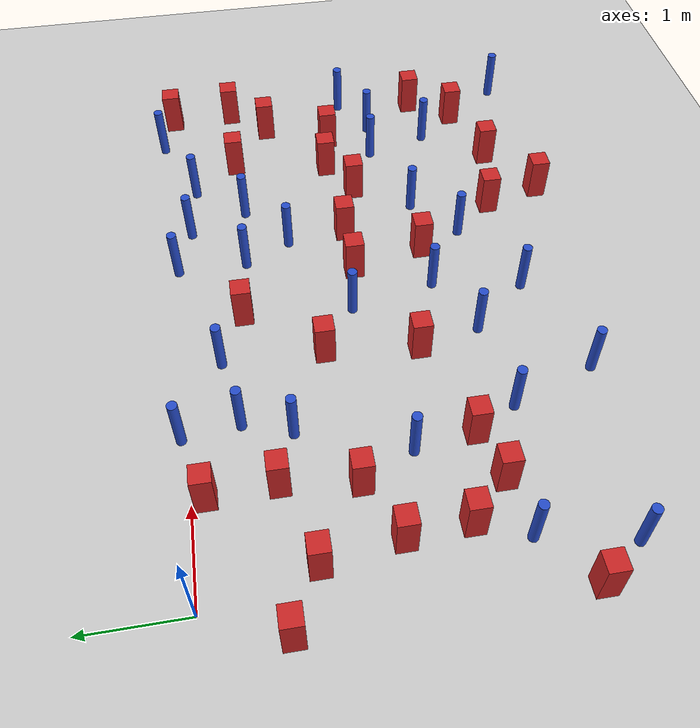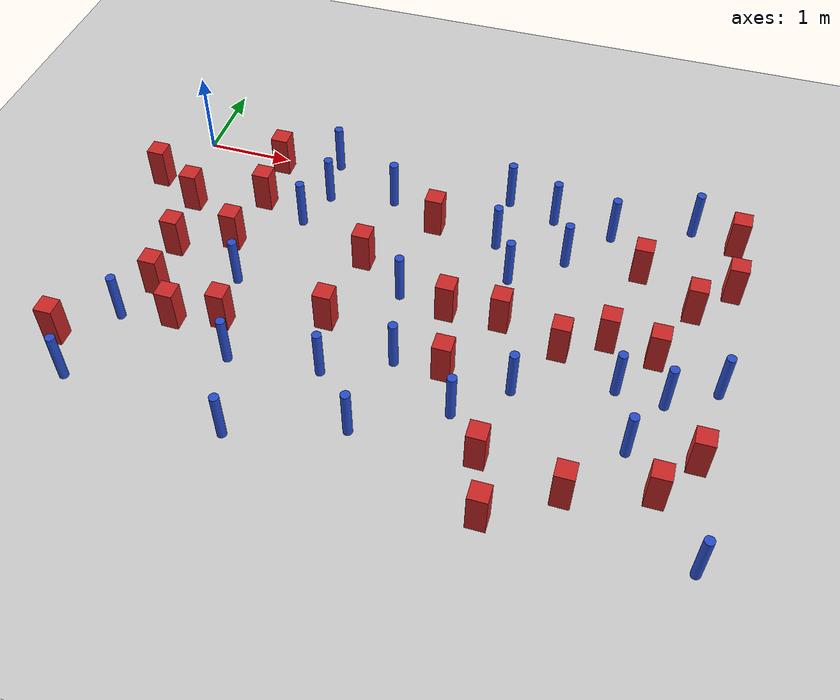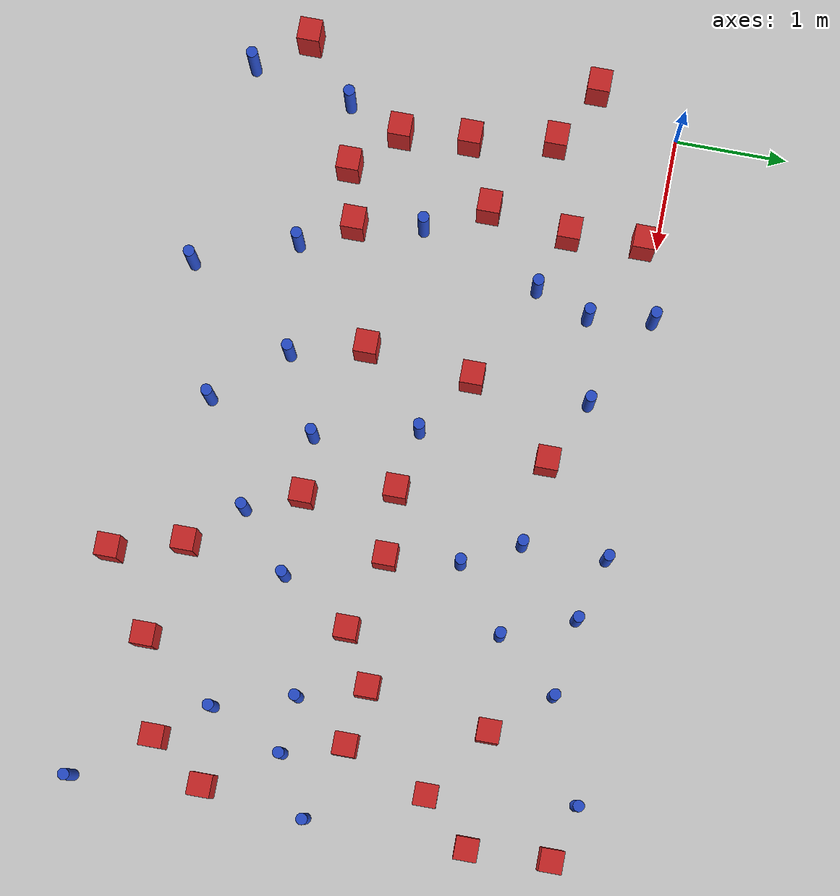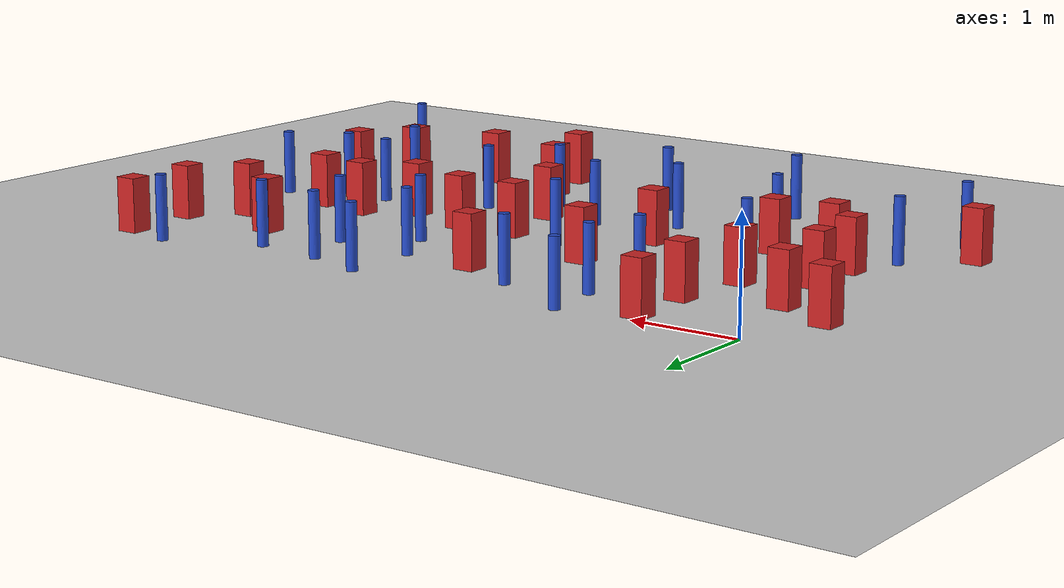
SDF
<sdf version="1.6">
 <world name="default">
  <model name="ground_plane">
   <static>1</static>
   <link name="link">
    <collision name="collision">
     <geometry><plane><normal>0 0 1</normal><size>100 100</size></plane></geometry>
     <surface><friction><ode><mu>100</mu><mu2>50</mu2></ode></friction></surface>
    </collision>
    <visual name="visual">
     <cast_shadows>0</cast_shadows>
     <geometry><plane><normal>0 0 1</normal><size>100 100</size></plane></geometry>
     <material>
      <ambient>1.0 1.0 1.0 1.0</ambient>
      <diffuse>0.8 0.8 0.8 1.0</diffuse>
      <specular>0.01 0.01 0.01 1.000000</specular>
     </material>
    </visual>
   </link>
  </model>
  <model name="NamedLocations">
   <static>true</static>
   <link name="DefaultStart"><pose>8.5 0 0 0 0 3.14</pose></link>
  </model>
  <model name="pole_obstacle0">
   <static>true</static>
   <pose>6.45569233629 -4.1689479482 7.38925637345e-09 -8.47170692796e-08 1.24976764786e-08 -1.74513093032e-07</pose>
   <link name="link">
    <pose>0 0 0.3 0 -0 0</pose>
    <inertial>
     <mass>1</mass>
     <inertia><ixx>0.145833</ixx><ixy>0</ixy><ixz>0</ixz><iyy>0.145833</iyy><iyz>0</iyz><izz>0.125</izz></inertia>
    </inertial>
    <collision name="collision">
     <geometry><cylinder><radius>0.05</radius><length>.6</length></cylinder></geometry>
    </collision>
    <visual name="visual">
     <geometry><cylinder><radius>0.05</radius><length>.6</length></cylinder></geometry>
     <material>
      <script><name>Gazebo/Blue</name><uri>file://media/materials/scripts/gazebo.material</uri></script>
     </material>
    </visual>
   </link>
  </model>
  <model name="square_post_obstacle3">
   <static>true</static>
   <pose>3.72914011373 -2.6606754903 1.91545236811e-07 -7.35059704564e-06 1.12565212e-07 2.39332434364e-05</pose>
   <link name="link">
    <pose>0 0 0.25 0 -0 0</pose>
    <inertial>
     <mass>100</mass>
     <inertia>
      <ixx>0.166667</ixx>
      <ixy>0</ixy>
      <ixz>0</ixz>
      <iyy>0.166667</iyy>
      <iyz>0</iyz>
      <izz>0.166667</izz>
     </inertia>
    </inertial>
    <collision name="collision"><geometry><box><size>.2 .2 .5</size></box></geometry></collision>
    <visual name="visual">
     <geometry><box><size>.2 .2 .5</size></box></geometry>
     <material>
      <script><name>Gazebo/Red</name><uri>file://media/materials/scripts/gazebo.material</uri></script>
     </material>
    </visual>
   </link>
  </model>
  <model name="square_post_obstacle4">
   <static>true</static>
   <pose>5.26585371671 -1.80309191971 1.91545236811e-07 -7.35059704564e-06 1.12565212e-07 2.39332434364e-05</pose>
   <link name="link">
    <pose>0 0 0.25 0 -0 0</pose>
    <inertial>
     <mass>100</mass>
     <inertia>
      <ixx>0.166667</ixx>
      <ixy>0</ixy>
      <ixz>0</ixz>
      <iyy>0.166667</iyy>
      <iyz>0</iyz>
      <izz>0.166667</izz>
     </inertia>
    </inertial>
    <collision name="collision"><geometry><box><size>.2 .2 .5</size></box></geometry></collision>
    <visual name="visual">
     <geometry><box><size>.2 .2 .5</size></box></geometry>
     <material>
      <script><name>Gazebo/Red</name><uri>file://media/materials/scripts/gazebo.material</uri></script>
     </material>
    </visual>
   </link>
  </model>
  <model name="square_post_obstacle10">
   <static>true</static>
   <pose>3.54481908602 -1.87227291666 1.91545236811e-07 -7.35059704564e-06 1.12565212e-07 2.39332434364e-05</pose>
   <link name="link">
    <pose>0 0 0.25 0 -0 0</pose>
    <inertial>
     <mass>100</mass>
     <inertia>
      <ixx>0.166667</ixx>
      <ixy>0</ixy>
      <ixz>0</ixz>
      <iyy>0.166667</iyy>
      <iyz>0</iyz>
      <izz>0.166667</izz>
     </inertia>
    </inertial>
    <collision name="collision"><geometry><box><size>.2 .2 .5</size></box></geometry></collision>
    <visual name="visual">
     <geometry><box><size>.2 .2 .5</size></box></geometry>
     <material>
      <script><name>Gazebo/Red</name><uri>file://media/materials/scripts/gazebo.material</uri></script>
     </material>
    </visual>
   </link>
  </model>
  <model name="square_post_obstacle12">
   <static>true</static>
   <pose>2.35717753829 -2.35318234047 1.91545236811e-07 -7.35059704564e-06 1.12565212e-07 2.39332434364e-05</pose>
   <link name="link">
    <pose>0 0 0.25 0 -0 0</pose>
    <inertial>
     <mass>100</mass>
     <inertia>
      <ixx>0.166667</ixx>
      <ixy>0</ixy>
      <ixz>0</ixz>
      <iyy>0.166667</iyy>
      <iyz>0</iyz>
      <izz>0.166667</izz>
     </inertia>
    </inertial>
    <collision name="collision"><geometry><box><size>.2 .2 .5</size></box></geometry></collision>
    <visual name="visual">
     <geometry><box><size>.2 .2 .5</size></box></geometry>
     <material>
      <script><name>Gazebo/Red</name><uri>file://media/materials/scripts/gazebo.material</uri></script>
     </material>
    </visual>
   </link>
  </model>
  <model name="pole_obstacle8">
   <static>true</static>
   <pose>2.49860189125 -0.361555364977 7.38925637345e-09 -8.471706928e-08 1.24976765172e-08 -1.74513093013e-07</pose>
   <link name="link">
    <pose>0 0 0.3 0 -0 0</pose>
    <inertial>
     <mass>1</mass>
     <inertia><ixx>0.145833</ixx><ixy>0</ixy><ixz>0</ixz><iyy>0.145833</iyy><iyz>0</iyz><izz>0.125</izz></inertia>
    </inertial>
    <collision name="collision">
     <geometry><cylinder><radius>0.05</radius><length>.6</length></cylinder></geometry>
    </collision>
    <visual name="visual">
     <geometry><cylinder><radius>0.05</radius><length>.6</length></cylinder></geometry>
     <material>
      <script><name>Gazebo/Blue</name><uri>file://media/materials/scripts/gazebo.material</uri></script>
     </material>
    </visual>
   </link>
  </model>
  <model name="square_post_obstacle15">
   <static>true</static>
   <pose>4.31363352942 -3.57697256788 1.91545236811e-07 -7.35059704564e-06 1.12565212e-07 2.39332434364e-05</pose>
   <link name="link">
    <pose>0 0 0.25 0 -0 0</pose>
    <inertial>
     <mass>100</mass>
     <inertia>
      <ixx>0.166667</ixx>
      <ixy>0</ixy>
      <ixz>0</ixz>
      <iyy>0.166667</iyy>
      <iyz>0</iyz>
      <izz>0.166667</izz>
     </inertia>
    </inertial>
    <collision name="collision"><geometry><box><size>.2 .2 .5</size></box></geometry></collision>
    <visual name="visual">
     <geometry><box><size>.2 .2 .5</size></box></geometry>
     <material>
      <script><name>Gazebo/Red</name><uri>file://media/materials/scripts/gazebo.material</uri></script>
     </material>
    </visual>
   </link>
  </model>
  <model name="pole_obstacle10">
   <static>true</static>
   <pose>3.82203805097 -0.716511106543 7.38925637345e-09 -8.471706928e-08 1.24976765177e-08 -1.74513093012e-07</pose>
   <link name="link">
    <pose>0 0 0.3 0 -0 0</pose>
    <inertial>
     <mass>1</mass>
     <inertia><ixx>0.145833</ixx><ixy>0</ixy><ixz>0</ixz><iyy>0.145833</iyy><iyz>0</iyz><izz>0.125</izz></inertia>
    </inertial>
    <collision name="collision">
     <geometry><cylinder><radius>0.05</radius><length>.6</length></cylinder></geometry>
    </collision>
    <visual name="visual">
     <geometry><cylinder><radius>0.05</radius><length>.6</length></cylinder></geometry>
     <material>
      <script><name>Gazebo/Blue</name><uri>file://media/materials/scripts/gazebo.material</uri></script>
     </material>
    </visual>
   </link>
  </model>
  <model name="square_post_obstacle19">
   <static>true</static>
   <pose>6.00379199853 -3.51849045793 1.91545236811e-07 -7.35059704564e-06 1.12565212e-07 2.39332434364e-05</pose>
   <link name="link">
    <pose>0 0 0.25 0 -0 0</pose>
    <inertial>
     <mass>100</mass>
     <inertia>
      <ixx>0.166667</ixx>
      <ixy>0</ixy>
      <ixz>0</ixz>
      <iyy>0.166667</iyy>
      <iyz>0</iyz>
      <izz>0.166667</izz>
     </inertia>
    </inertial>
    <collision name="collision"><geometry><box><size>.2 .2 .5</size></box></geometry></collision>
    <visual name="visual">
     <geometry><box><size>.2 .2 .5</size></box></geometry>
     <material>
      <script><name>Gazebo/Red</name><uri>file://media/materials/scripts/gazebo.material</uri></script>
     </material>
    </visual>
   </link>
  </model>
  <model name="pole_obstacle12">
   <static>true</static>
   <pose>0.215988565415 -2.90076868346 7.38925637345e-09 -8.47170692792e-08 1.24976764352e-08 -1.74513093043e-07</pose>
   <link name="link">
    <pose>0 0 0.3 0 -0 0</pose>
    <inertial>
     <mass>1</mass>
     <inertia><ixx>0.145833</ixx><ixy>0</ixy><ixz>0</ixz><iyy>0.145833</iyy><iyz>0</iyz><izz>0.125</izz></inertia>
    </inertial>
    <collision name="collision">
     <geometry><cylinder><radius>0.05</radius><length>.6</length></cylinder></geometry>
    </collision>
    <visual name="visual">
     <geometry><cylinder><radius>0.05</radius><length>.6</length></cylinder></geometry>
     <material>
      <script><name>Gazebo/Blue</name><uri>file://media/materials/scripts/gazebo.material</uri></script>
     </material>
    </visual>
   </link>
  </model>
  <model name="square_post_obstacle21">
   <static>true</static>
   <pose>6.33950803841 -3.03932088624 1.91545236811e-07 -7.35059704564e-06 1.12565212e-07 2.39332434364e-05</pose>
   <link name="link">
    <pose>0 0 0.25 0 -0 0</pose>
    <inertial>
     <mass>100</mass>
     <inertia>
      <ixx>0.166667</ixx>
      <ixy>0</ixy>
      <ixz>0</ixz>
      <iyy>0.166667</iyy>
      <iyz>0</iyz>
      <izz>0.166667</izz>
     </inertia>
    </inertial>
    <collision name="collision"><geometry><box><size>.2 .2 .5</size></box></geometry></collision>
    <visual name="visual">
     <geometry><box><size>.2 .2 .5</size></box></geometry>
     <material>
      <script><name>Gazebo/Red</name><uri>file://media/materials/scripts/gazebo.material</uri></script>
     </material>
    </visual>
   </link>
  </model>
  <model name="pole_obstacle17">
   <static>true</static>
   <pose>3.94140053442 -3.13863201137 7.38925637345e-09 -8.47170692798e-08 1.24976764939e-08 -1.74513093025e-07</pose>
   <link name="link">
    <pose>0 0 0.3 0 -0 0</pose>
    <inertial>
     <mass>1</mass>
     <inertia><ixx>0.145833</ixx><ixy>0</ixy><ixz>0</ixz><iyy>0.145833</iyy><iyz>0</iyz><izz>0.125</izz></inertia>
    </inertial>
    <collision name="collision">
     <geometry><cylinder><radius>0.05</radius><length>.6</length></cylinder></geometry>
    </collision>
    <visual name="visual">
     <geometry><cylinder><radius>0.05</radius><length>.6</length></cylinder></geometry>
     <material>
      <script><name>Gazebo/Blue</name><uri>file://media/materials/scripts/gazebo.material</uri></script>
     </material>
    </visual>
   </link>
  </model>
  <model name="square_post_obstacle30">
   <static>true</static>
   <pose>3.07154324668 -0.629317845728 1.91545236811e-07 -7.35059704564e-06 1.12565212e-07 2.39332434364e-05</pose>
   <link name="link">
    <pose>0 0 0.25 0 -0 0</pose>
    <inertial>
     <mass>100</mass>
     <inertia>
      <ixx>0.166667</ixx>
      <ixy>0</ixy>
      <ixz>0</ixz>
      <iyy>0.166667</iyy>
      <iyz>0</iyz>
      <izz>0.166667</izz>
     </inertia>
    </inertial>
    <collision name="collision"><geometry><box><size>.2 .2 .5</size></box></geometry></collision>
    <visual name="visual">
     <geometry><box><size>.2 .2 .5</size></box></geometry>
     <material>
      <script><name>Gazebo/Red</name><uri>file://media/materials/scripts/gazebo.material</uri></script>
     </material>
    </visual>
   </link>
  </model>
  <model name="pole_obstacle25">
   <static>true</static>
   <pose>3.81747457438 0.0243876135548 7.38925637345e-09 -8.47170692793e-08 1.24976764457e-08 -1.74513093039e-07</pose>
   <link name="link">
    <pose>0 0 0.3 0 -0 0</pose>
    <inertial>
     <mass>1</mass>
     <inertia><ixx>0.145833</ixx><ixy>0</ixy><ixz>0</ixz><iyy>0.145833</iyy><iyz>0</iyz><izz>0.125</izz></inertia>
    </inertial>
    <collision name="collision">
     <geometry><cylinder><radius>0.05</radius><length>.6</length></cylinder></geometry>
    </collision>
    <visual name="visual">
     <geometry><cylinder><radius>0.05</radius><length>.6</length></cylinder></geometry>
     <material>
      <script><name>Gazebo/Blue</name><uri>file://media/materials/scripts/gazebo.material</uri></script>
     </material>
    </visual>
   </link>
  </model>
  <model name="pole_obstacle28">
   <static>true</static>
   <pose>4.62795770287 -0.76906631705 7.38925637345e-09 -8.47170692799e-08 1.24976765038e-08 -1.74513093018e-07</pose>
   <link name="link">
    <pose>0 0 0.3 0 -0 0</pose>
    <inertial>
     <mass>1</mass>
     <inertia><ixx>0.145833</ixx><ixy>0</ixy><ixz>0</ixz><iyy>0.145833</iyy><iyz>0</iyz><izz>0.125</izz></inertia>
    </inertial>
    <collision name="collision">
     <geometry><cylinder><radius>0.05</radius><length>.6</length></cylinder></geometry>
    </collision>
    <visual name="visual">
     <geometry><cylinder><radius>0.05</radius><length>.6</length></cylinder></geometry>
     <material>
      <script><name>Gazebo/Blue</name><uri>file://media/materials/scripts/gazebo.material</uri></script>
     </material>
    </visual>
   </link>
  </model>
  <model name="square_post_obstacle34">
   <static>true</static>
   <pose>0.941888120557 -1.52196813781 1.91545236811e-07 -7.35059704564e-06 1.12565212e-07 2.39332434364e-05</pose>
   <link name="link">
    <pose>0 0 0.25 0 -0 0</pose>
    <inertial>
     <mass>100</mass>
     <inertia>
      <ixx>0.166667</ixx>
      <ixy>0</ixy>
      <ixz>0</ixz>
      <iyy>0.166667</iyy>
      <iyz>0</iyz>
      <izz>0.166667</izz>
     </inertia>
    </inertial>
    <collision name="collision"><geometry><box><size>.2 .2 .5</size></box></geometry></collision>
    <visual name="visual">
     <geometry><box><size>.2 .2 .5</size></box></geometry>
     <material>
      <script><name>Gazebo/Red</name><uri>file://media/materials/scripts/gazebo.material</uri></script>
     </material>
    </visual>
   </link>
  </model>
  <model name="pole_obstacle45">
   <static>true</static>
   <pose>5.94297906391 0.129956108175 7.38925637345e-09 -8.47170692801e-08 1.24976765186e-08 -1.74513093012e-07</pose>
   <link name="link">
    <pose>0 0 0.3 0 -0 0</pose>
    <inertial>
     <mass>1</mass>
     <inertia><ixx>0.145833</ixx><ixy>0</ixy><ixz>0</ixz><iyy>0.145833</iyy><iyz>0</iyz><izz>0.125</izz></inertia>
    </inertial>
    <collision name="collision">
     <geometry><cylinder><radius>0.05</radius><length>.6</length></cylinder></geometry>
    </collision>
    <visual name="visual">
     <geometry><cylinder><radius>0.05</radius><length>.6</length></cylinder></geometry>
     <material>
      <script><name>Gazebo/Blue</name><uri>file://media/materials/scripts/gazebo.material</uri></script>
     </material>
    </visual>
   </link>
  </model>
  <model name="square_post_obstacle55">
   <static>true</static>
   <pose>6.08186259291 -1.1484083643 1.91545236811e-07 -7.35059704564e-06 1.12565212e-07 2.39332434364e-05</pose>
   <link name="link">
    <pose>0 0 0.25 0 -0 0</pose>
    <inertial>
     <mass>100</mass>
     <inertia>
      <ixx>0.166667</ixx>
      <ixy>0</ixy>
      <ixz>0</ixz>
      <iyy>0.166667</iyy>
      <iyz>0</iyz>
      <izz>0.166667</izz>
     </inertia>
    </inertial>
    <collision name="collision"><geometry><box><size>.2 .2 .5</size></box></geometry></collision>
    <visual name="visual">
     <geometry><box><size>.2 .2 .5</size></box></geometry>
     <material>
      <script><name>Gazebo/Red</name><uri>file://media/materials/scripts/gazebo.material</uri></script>
     </material>
    </visual>
   </link>
  </model>
  <model name="square_post_obstacle61">
   <static>true</static>
   <pose>6.46481894077 -0.731252812491 1.91545236811e-07 -7.35059704564e-06 1.12565212e-07 2.39332434364e-05</pose>
   <link name="link">
    <pose>0 0 0.25 0 -0 0</pose>
    <inertial>
     <mass>100</mass>
     <inertia>
      <ixx>0.166667</ixx>
      <ixy>0</ixy>
      <ixz>0</ixz>
      <iyy>0.166667</iyy>
      <iyz>0</iyz>
      <izz>0.166667</izz>
     </inertia>
    </inertial>
    <collision name="collision"><geometry><box><size>.2 .2 .5</size></box></geometry></collision>
    <visual name="visual">
     <geometry><box><size>.2 .2 .5</size></box></geometry>
     <material>
      <script><name>Gazebo/Red</name><uri>file://media/materials/scripts/gazebo.material</uri></script>
     </material>
    </visual>
   </link>
  </model>
  <model name="pole_obstacle59">
   <static>true</static>
   <pose>6.46403293455 -2.13285358477 7.38925637345e-09 -8.47170692798e-08 1.24976764937e-08 -1.74513093023e-07</pose>
   <link name="link">
    <pose>0 0 0.3 0 -0 0</pose>
    <inertial>
     <mass>1</mass>
     <inertia><ixx>0.145833</ixx><ixy>0</ixy><ixz>0</ixz><iyy>0.145833</iyy><iyz>0</iyz><izz>0.125</izz></inertia>
    </inertial>
    <collision name="collision">
     <geometry><cylinder><radius>0.05</radius><length>.6</length></cylinder></geometry>
    </collision>
    <visual name="visual">
     <geometry><cylinder><radius>0.05</radius><length>.6</length></cylinder></geometry>
     <material>
      <script><name>Gazebo/Blue</name><uri>file://media/materials/scripts/gazebo.material</uri></script>
     </material>
    </visual>
   </link>
  </model>
  <model name="square_post_obstacle65">
   <static>true</static>
   <pose>2.46185416951 -1.39918184585 1.91545236811e-07 -7.35059704564e-06 1.12565212e-07 2.39332434364e-05</pose>
   <link name="link">
    <pose>0 0 0.25 0 -0 0</pose>
    <inertial>
     <mass>100</mass>
     <inertia>
      <ixx>0.166667</ixx>
      <ixy>0</ixy>
      <ixz>0</ixz>
      <iyy>0.166667</iyy>
      <iyz>0</iyz>
      <izz>0.166667</izz>
     </inertia>
    </inertial>
    <collision name="collision"><geometry><box><size>.2 .2 .5</size></box></geometry></collision>
    <visual name="visual">
     <geometry><box><size>.2 .2 .5</size></box></geometry>
     <material>
      <script><name>Gazebo/Red</name><uri>file://media/materials/scripts/gazebo.material</uri></script>
     </material>
    </visual>
   </link>
  </model>
  <model name="pole_obstacle63">
   <static>true</static>
   <pose>3.03463513822 -3.61711571949 7.38925637345e-09 -8.47170692798e-08 1.24976764939e-08 -1.74513093025e-07</pose>
   <link name="link">
    <pose>0 0 0.3 0 -0 0</pose>
    <inertial>
     <mass>1</mass>
     <inertia><ixx>0.145833</ixx><ixy>0</ixy><ixz>0</ixz><iyy>0.145833</iyy><iyz>0</iyz><izz>0.125</izz></inertia>
    </inertial>
    <collision name="collision">
     <geometry><cylinder><radius>0.05</radius><length>.6</length></cylinder></geometry>
    </collision>
    <visual name="visual">
     <geometry><cylinder><radius>0.05</radius><length>.6</length></cylinder></geometry>
     <material>
      <script><name>Gazebo/Blue</name><uri>file://media/materials/scripts/gazebo.material</uri></script>
     </material>
    </visual>
   </link>
  </model>
  <model name="pole_obstacle72">
   <static>true</static>
   <pose>4.37923026815 -0.140369925279 7.38925637345e-09 -8.471706928e-08 1.24976765188e-08 -1.74513093011e-07</pose>
   <link name="link">
    <pose>0 0 0.3 0 -0 0</pose>
    <inertial>
     <mass>1</mass>
     <inertia><ixx>0.145833</ixx><ixy>0</ixy><ixz>0</ixz><iyy>0.145833</iyy><iyz>0</iyz><izz>0.125</izz></inertia>
    </inertial>
    <collision name="collision">
     <geometry><cylinder><radius>0.05</radius><length>.6</length></cylinder></geometry>
    </collision>
    <visual name="visual">
     <geometry><cylinder><radius>0.05</radius><length>.6</length></cylinder></geometry>
     <material>
      <script><name>Gazebo/Blue</name><uri>file://media/materials/scripts/gazebo.material</uri></script>
     </material>
    </visual>
   </link>
  </model>
  <model name="square_post_obstacle77">
   <static>true</static>
   <pose>1.04527880258 -0.792780679803 1.91545236811e-07 -7.35059704564e-06 1.12565212e-07 2.39332434364e-05</pose>
   <link name="link">
    <pose>0 0 0.25 0 -0 0</pose>
    <inertial>
     <mass>100</mass>
     <inertia>
      <ixx>0.166667</ixx>
      <ixy>0</ixy>
      <ixz>0</ixz>
      <iyy>0.166667</iyy>
      <iyz>0</iyz>
      <izz>0.166667</izz>
     </inertia>
    </inertial>
    <collision name="collision"><geometry><box><size>.2 .2 .5</size></box></geometry></collision>
    <visual name="visual">
     <geometry><box><size>.2 .2 .5</size></box></geometry>
     <material>
      <script><name>Gazebo/Red</name><uri>file://media/materials/scripts/gazebo.material</uri></script>
     </material>
    </visual>
   </link>
  </model>
  <model name="square_post_obstacle79">
   <static>true</static>
   <pose>5.45620392106 -0.719798995207 1.91545236811e-07 -7.35059704564e-06 1.12565212e-07 2.39332434364e-05</pose>
   <link name="link">
    <pose>0 0 0.25 0 -0 0</pose>
    <inertial>
     <mass>100</mass>
     <inertia>
      <ixx>0.166667</ixx>
      <ixy>0</ixy>
      <ixz>0</ixz>
      <iyy>0.166667</iyy>
      <iyz>0</iyz>
      <izz>0.166667</izz>
     </inertia>
    </inertial>
    <collision name="collision"><geometry><box><size>.2 .2 .5</size></box></geometry></collision>
    <visual name="visual">
     <geometry><box><size>.2 .2 .5</size></box></geometry>
     <material>
      <script><name>Gazebo/Red</name><uri>file://media/materials/scripts/gazebo.material</uri></script>
     </material>
    </visual>
   </link>
  </model>
  <model name="pole_obstacle92">
   <static>true</static>
   <pose>1.67642680315 0.0671667085578 7.38925637345e-09 -8.47170692799e-08 1.24976765069e-08 -1.74513093017e-07</pose>
   <link name="link">
    <pose>0 0 0.3 0 -0 0</pose>
    <inertial>
     <mass>1</mass>
     <inertia><ixx>0.145833</ixx><ixy>0</ixy><ixz>0</ixz><iyy>0.145833</iyy><iyz>0</iyz><izz>0.125</izz></inertia>
    </inertial>
    <collision name="collision">
     <geometry><cylinder><radius>0.05</radius><length>.6</length></cylinder></geometry>
    </collision>
    <visual name="visual">
     <geometry><cylinder><radius>0.05</radius><length>.6</length></cylinder></geometry>
     <material>
      <script><name>Gazebo/Blue</name><uri>file://media/materials/scripts/gazebo.material</uri></script>
     </material>
    </visual>
   </link>
  </model>
  <model name="square_post_obstacle83">
   <static>true</static>
   <pose>4.80955125158 -2.07028521446 1.91545236811e-07 -7.35059704564e-06 1.12565212e-07 2.39332434364e-05</pose>
   <link name="link">
    <pose>0 0 0.25 0 -0 0</pose>
    <inertial>
     <mass>100</mass>
     <inertia>
      <ixx>0.166667</ixx>
      <ixy>0</ixy>
      <ixz>0</ixz>
      <iyy>0.166667</iyy>
      <iyz>0</iyz>
      <izz>0.166667</izz>
     </inertia>
    </inertial>
    <collision name="collision"><geometry><box><size>.2 .2 .5</size></box></geometry></collision>
    <visual name="visual">
     <geometry><box><size>.2 .2 .5</size></box></geometry>
     <material>
      <script><name>Gazebo/Red</name><uri>file://media/materials/scripts/gazebo.material</uri></script>
     </material>
    </visual>
   </link>
  </model>
  <model name="pole_obstacle121">
   <static>true</static>
   <pose>5.66816344616 -3.08764963438 7.38925637345e-09 -8.47170692798e-08 1.24976764937e-08 -1.74513093023e-07</pose>
   <link name="link">
    <pose>0 0 0.3 0 -0 0</pose>
    <inertial>
     <mass>1</mass>
     <inertia><ixx>0.145833</ixx><ixy>0</ixy><ixz>0</ixz><iyy>0.145833</iyy><iyz>0</iyz><izz>0.125</izz></inertia>
    </inertial>
    <collision name="collision">
     <geometry><cylinder><radius>0.05</radius><length>.6</length></cylinder></geometry>
    </collision>
    <visual name="visual">
     <geometry><cylinder><radius>0.05</radius><length>.6</length></cylinder></geometry>
     <material>
      <script><name>Gazebo/Blue</name><uri>file://media/materials/scripts/gazebo.material</uri></script>
     </material>
    </visual>
   </link>
  </model>
  <model name="pole_obstacle126">
   <static>true</static>
   <pose>2.52396847582 -3.01019829357 7.38925637345e-09 -8.47170692798e-08 1.24976764939e-08 -1.74513093025e-07</pose>
   <link name="link">
    <pose>0 0 0.3 0 -0 0</pose>
    <inertial>
     <mass>1</mass>
     <inertia><ixx>0.145833</ixx><ixy>0</ixy><ixz>0</ixz><iyy>0.145833</iyy><iyz>0</iyz><izz>0.125</izz></inertia>
    </inertial>
    <collision name="collision">
     <geometry><cylinder><radius>0.05</radius><length>.6</length></cylinder></geometry>
    </collision>
    <visual name="visual">
     <geometry><cylinder><radius>0.05</radius><length>.6</length></cylinder></geometry>
     <material>
      <script><name>Gazebo/Blue</name><uri>file://media/materials/scripts/gazebo.material</uri></script>
     </material>
    </visual>
   </link>
  </model>
  <model name="pole_obstacle134">
   <static>true</static>
   <pose>1.54305510012 -3.11592347389 7.38925637345e-09 -8.47170692799e-08 1.24976765053e-08 -1.74513093017e-07</pose>
   <link name="link">
    <pose>0 0 0.3 0 -0 0</pose>
    <inertial>
     <mass>1</mass>
     <inertia><ixx>0.145833</ixx><ixy>0</ixy><ixz>0</ixz><iyy>0.145833</iyy><iyz>0</iyz><izz>0.125</izz></inertia>
    </inertial>
    <collision name="collision">
     <geometry><cylinder><radius>0.05</radius><length>.6</length></cylinder></geometry>
    </collision>
    <visual name="visual">
     <geometry><cylinder><radius>0.05</radius><length>.6</length></cylinder></geometry>
     <material>
      <script><name>Gazebo/Blue</name><uri>file://media/materials/scripts/gazebo.material</uri></script>
     </material>
    </visual>
   </link>
  </model>
  <model name="square_post_obstacle116">
   <static>true</static>
   <pose>0.785318791908 -2.80075919067 1.91545236811e-07 -7.35059704564e-06 1.12565212e-07 2.39332434364e-05</pose>
   <link name="link">
    <pose>0 0 0.25 0 -0 0</pose>
    <inertial>
     <mass>100</mass>
     <inertia>
      <ixx>0.166667</ixx>
      <ixy>0</ixy>
      <ixz>0</ixz>
      <iyy>0.166667</iyy>
      <iyz>0</iyz>
      <izz>0.166667</izz>
     </inertia>
    </inertial>
    <collision name="collision"><geometry><box><size>.2 .2 .5</size></box></geometry></collision>
    <visual name="visual">
     <geometry><box><size>.2 .2 .5</size></box></geometry>
     <material>
      <script><name>Gazebo/Red</name><uri>file://media/materials/scripts/gazebo.material</uri></script>
     </material>
    </visual>
   </link>
  </model>
  <model name="square_post_obstacle118">
   <static>true</static>
   <pose>-0.293369010019 -3.35173558408 1.91545236811e-07 -7.35059704564e-06 1.12565212e-07 2.39332434364e-05</pose>
   <link name="link">
    <pose>0 0 0.25 0 -0 0</pose>
    <inertial>
     <mass>100</mass>
     <inertia>
      <ixx>0.166667</ixx>
      <ixy>0</ixy>
      <ixz>0</ixz>
      <iyy>0.166667</iyy>
      <iyz>0</iyz>
      <izz>0.166667</izz>
     </inertia>
    </inertial>
    <collision name="collision"><geometry><box><size>.2 .2 .5</size></box></geometry></collision>
    <visual name="visual">
     <geometry><box><size>.2 .2 .5</size></box></geometry>
     <material>
      <script><name>Gazebo/Red</name><uri>file://media/materials/scripts/gazebo.material</uri></script>
     </material>
    </visual>
   </link>
  </model>
  <model name="square_post_obstacle120">
   <static>true</static>
   <pose>5.17182999823 -3.75941097542 1.91545236811e-07 -7.35059704564e-06 1.12565212e-07 2.39332434364e-05</pose>
   <link name="link">
    <pose>0 0 0.25 0 -0 0</pose>
    <inertial>
     <mass>100</mass>
     <inertia>
      <ixx>0.166667</ixx>
      <ixy>0</ixy>
      <ixz>0</ixz>
      <iyy>0.166667</iyy>
      <iyz>0</iyz>
      <izz>0.166667</izz>
     </inertia>
    </inertial>
    <collision name="collision"><geometry><box><size>.2 .2 .5</size></box></geometry></collision>
    <visual name="visual">
     <geometry><box><size>.2 .2 .5</size></box></geometry>
     <material>
      <script><name>Gazebo/Red</name><uri>file://media/materials/scripts/gazebo.material</uri></script>
     </material>
    </visual>
   </link>
  </model>
  <model name="square_post_obstacle128">
   <static>true</static>
   <pose>0.406396634696 -2.4136307573 1.91545236811e-07 -7.35059704564e-06 1.12565212e-07 2.39332434364e-05</pose>
   <link name="link">
    <pose>0 0 0.25 0 -0 0</pose>
    <inertial>
     <mass>100</mass>
     <inertia>
      <ixx>0.166667</ixx>
      <ixy>0</ixy>
      <ixz>0</ixz>
      <iyy>0.166667</iyy>
      <iyz>0</iyz>
      <izz>0.166667</izz>
     </inertia>
    </inertial>
    <collision name="collision"><geometry><box><size>.2 .2 .5</size></box></geometry></collision>
    <visual name="visual">
     <geometry><box><size>.2 .2 .5</size></box></geometry>
     <material>
      <script><name>Gazebo/Red</name><uri>file://media/materials/scripts/gazebo.material</uri></script>
     </material>
    </visual>
   </link>
  </model>
  <model name="square_post_obstacle133">
   <static>true</static>
   <pose>-0.301640267485 -0.761790117217 1.91545236811e-07 -7.35059704564e-06 1.12565212e-07 2.39332434364e-05</pose>
   <link name="link">
    <pose>0 0 0.25 0 -0 0</pose>
    <inertial>
     <mass>100</mass>
     <inertia>
      <ixx>0.166667</ixx>
      <ixy>0</ixy>
      <ixz>0</ixz>
      <iyy>0.166667</iyy>
      <iyz>0</iyz>
      <izz>0.166667</izz>
     </inertia>
    </inertial>
    <collision name="collision"><geometry><box><size>.2 .2 .5</size></box></geometry></collision>
    <visual name="visual">
     <geometry><box><size>.2 .2 .5</size></box></geometry>
     <material>
      <script><name>Gazebo/Red</name><uri>file://media/materials/scripts/gazebo.material</uri></script>
     </material>
    </visual>
   </link>
  </model>
  <model name="square_post_obstacle139">
   <static>true</static>
   <pose>0.241376500069 -1.04686280771 1.91545236811e-07 -7.35059704564e-06 1.12565212e-07 2.39332434364e-05</pose>
   <link name="link">
    <pose>0 0 0.25 0 -0 0</pose>
    <inertial>
     <mass>100</mass>
     <inertia>
      <ixx>0.166667</ixx>
      <ixy>0</ixy>
      <ixz>0</ixz>
      <iyy>0.166667</iyy>
      <iyz>0</iyz>
      <izz>0.166667</izz>
     </inertia>
    </inertial>
    <collision name="collision"><geometry><box><size>.2 .2 .5</size></box></geometry></collision>
    <visual name="visual">
     <geometry><box><size>.2 .2 .5</size></box></geometry>
     <material>
      <script><name>Gazebo/Red</name><uri>file://media/materials/scripts/gazebo.material</uri></script>
     </material>
    </visual>
   </link>
  </model>
  <model name="pole_obstacle149">
   <static>true</static>
   <pose>3.20793266205 -2.67342492518 7.38925637345e-09 -8.47170692798e-08 1.24976764939e-08 -1.74513093025e-07</pose>
   <link name="link">
    <pose>0 0 0.3 0 -0 0</pose>
    <inertial>
     <mass>1</mass>
     <inertia><ixx>0.145833</ixx><ixy>0</ixy><ixz>0</ixz><iyy>0.145833</iyy><iyz>0</iyz><izz>0.125</izz></inertia>
    </inertial>
    <collision name="collision">
     <geometry><cylinder><radius>0.05</radius><length>.6</length></cylinder></geometry>
    </collision>
    <visual name="visual">
     <geometry><cylinder><radius>0.05</radius><length>.6</length></cylinder></geometry>
     <material>
      <script><name>Gazebo/Blue</name><uri>file://media/materials/scripts/gazebo.material</uri></script>
     </material>
    </visual>
   </link>
  </model>
  <model name="pole_obstacle154">
   <static>true</static>
   <pose>4.07410040962 -1.21171812363 7.38925637345e-09 -8.471706928e-08 1.24976765134e-08 -1.74513093015e-07</pose>
   <link name="link">
    <pose>0 0 0.3 0 -0 0</pose>
    <inertial>
     <mass>1</mass>
     <inertia><ixx>0.145833</ixx><ixy>0</ixy><ixz>0</ixz><iyy>0.145833</iyy><iyz>0</iyz><izz>0.125</izz></inertia>
    </inertial>
    <collision name="collision">
     <geometry><cylinder><radius>0.05</radius><length>.6</length></cylinder></geometry>
    </collision>
    <visual name="visual">
     <geometry><cylinder><radius>0.05</radius><length>.6</length></cylinder></geometry>
     <material>
      <script><name>Gazebo/Blue</name><uri>file://media/materials/scripts/gazebo.material</uri></script>
     </material>
    </visual>
   </link>
  </model>
  <model name="square_post_obstacle149">
   <static>true</static>
   <pose>4.48695445278 -4.20619593846 1.91545236811e-07 -7.35059704564e-06 1.12565212e-07 2.39332434364e-05</pose>
   <link name="link">
    <pose>0 0 0.25 0 -0 0</pose>
    <inertial>
     <mass>100</mass>
     <inertia>
      <ixx>0.166667</ixx>
      <ixy>0</ixy>
      <ixz>0</ixz>
      <iyy>0.166667</iyy>
      <iyz>0</iyz>
      <izz>0.166667</izz>
     </inertia>
    </inertial>
    <collision name="collision"><geometry><box><size>.2 .2 .5</size></box></geometry></collision>
    <visual name="visual">
     <geometry><box><size>.2 .2 .5</size></box></geometry>
     <material>
      <script><name>Gazebo/Red</name><uri>file://media/materials/scripts/gazebo.material</uri></script>
     </material>
    </visual>
   </link>
  </model>
  <model name="pole_obstacle160">
   <static>true</static>
   <pose>4.44847794078 -2.69228341101 7.38925637345e-09 -8.47170692798e-08 1.24976764937e-08 -1.74513093023e-07</pose>
   <link name="link">
    <pose>0 0 0.3 0 -0 0</pose>
    <inertial>
     <mass>1</mass>
     <inertia><ixx>0.145833</ixx><ixy>0</ixy><ixz>0</ixz><iyy>0.145833</iyy><iyz>0</iyz><izz>0.125</izz></inertia>
    </inertial>
    <collision name="collision">
     <geometry><cylinder><radius>0.05</radius><length>.6</length></cylinder></geometry>
    </collision>
    <visual name="visual">
     <geometry><cylinder><radius>0.05</radius><length>.6</length></cylinder></geometry>
     <material>
      <script><name>Gazebo/Blue</name><uri>file://media/materials/scripts/gazebo.material</uri></script>
     </material>
    </visual>
   </link>
  </model>
  <model name="pole_obstacle161">
   <static>true</static>
   <pose>1.21161956871 -2.05990757772 7.38925637345e-09 -8.47170692799e-08 1.24976765053e-08 -1.74513093017e-07</pose>
   <link name="link">
    <pose>0 0 0.3 0 -0 0</pose>
    <inertial>
     <mass>1</mass>
     <inertia><ixx>0.145833</ixx><ixy>0</ixy><ixz>0</ixz><iyy>0.145833</iyy><iyz>0</iyz><izz>0.125</izz></inertia>
    </inertial>
    <collision name="collision">
     <geometry><cylinder><radius>0.05</radius><length>.6</length></cylinder></geometry>
    </collision>
    <visual name="visual">
     <geometry><cylinder><radius>0.05</radius><length>.6</length></cylinder></geometry>
     <material>
      <script><name>Gazebo/Blue</name><uri>file://media/materials/scripts/gazebo.material</uri></script>
     </material>
    </visual>
   </link>
  </model>
  <model name="square_post_obstacle157">
   <static>true</static>
   <pose>4.13498234727 -1.85687447901 1.91545236811e-07 -7.35059704564e-06 1.12565212e-07 2.39332434364e-05</pose>
   <link name="link">
    <pose>0 0 0.25 0 -0 0</pose>
    <inertial>
     <mass>100</mass>
     <inertia>
      <ixx>0.166667</ixx>
      <ixy>0</ixy>
      <ixz>0</ixz>
      <iyy>0.166667</iyy>
      <iyz>0</iyz>
      <izz>0.166667</izz>
     </inertia>
    </inertial>
    <collision name="collision"><geometry><box><size>.2 .2 .5</size></box></geometry></collision>
    <visual name="visual">
     <geometry><box><size>.2 .2 .5</size></box></geometry>
     <material>
      <script><name>Gazebo/Red</name><uri>file://media/materials/scripts/gazebo.material</uri></script>
     </material>
    </visual>
   </link>
  </model>
  <model name="pole_obstacle166">
   <static>true</static>
   <pose>5.45638582987 -2.38693026478 7.38925637345e-09 -8.47170692798e-08 1.24976764937e-08 -1.74513093023e-07</pose>
   <link name="link">
    <pose>0 0 0.3 0 -0 0</pose>
    <inertial>
     <mass>1</mass>
     <inertia><ixx>0.145833</ixx><ixy>0</ixy><ixz>0</ixz><iyy>0.145833</iyy><iyz>0</iyz><izz>0.125</izz></inertia>
    </inertial>
    <collision name="collision">
     <geometry><cylinder><radius>0.05</radius><length>.6</length></cylinder></geometry>
    </collision>
    <visual name="visual">
     <geometry><cylinder><radius>0.05</radius><length>.6</length></cylinder></geometry>
     <material>
      <script><name>Gazebo/Blue</name><uri>file://media/materials/scripts/gazebo.material</uri></script>
     </material>
    </visual>
   </link>
  </model>
  <model name="pole_obstacle167">
   <static>true</static>
   <pose>1.57632554629 -0.982092629621 7.38925637345e-09 -8.47170692798e-08 1.24976765028e-08 -1.74513093019e-07</pose>
   <link name="link">
    <pose>0 0 0.3 0 -0 0</pose>
    <inertial>
     <mass>1</mass>
     <inertia><ixx>0.145833</ixx><ixy>0</ixy><ixz>0</ixz><iyy>0.145833</iyy><iyz>0</iyz><izz>0.125</izz></inertia>
    </inertial>
    <collision name="collision">
     <geometry><cylinder><radius>0.05</radius><length>.6</length></cylinder></geometry>
    </collision>
    <visual name="visual">
     <geometry><cylinder><radius>0.05</radius><length>.6</length></cylinder></geometry>
     <material>
      <script><name>Gazebo/Blue</name><uri>file://media/materials/scripts/gazebo.material</uri></script>
     </material>
    </visual>
   </link>
  </model>
  <model name="square_post_obstacle164">
   <static>true</static>
   <pose>0.358987598016 -1.79642390243 1.91545236811e-07 -7.35059704564e-06 1.12565212e-07 2.39332434364e-05</pose>
   <link name="link">
    <pose>0 0 0.25 0 -0 0</pose>
    <inertial>
     <mass>100</mass>
     <inertia>
      <ixx>0.166667</ixx>
      <ixy>0</ixy>
      <ixz>0</ixz>
      <iyy>0.166667</iyy>
      <iyz>0</iyz>
      <izz>0.166667</izz>
     </inertia>
    </inertial>
    <collision name="collision"><geometry><box><size>.2 .2 .5</size></box></geometry></collision>
    <visual name="visual">
     <geometry><box><size>.2 .2 .5</size></box></geometry>
     <material>
      <script><name>Gazebo/Red</name><uri>file://media/materials/scripts/gazebo.material</uri></script>
     </material>
    </visual>
   </link>
  </model>
  <model name="pole_obstacle175">
   <static>true</static>
   <pose>5.0603583082 -0.224390902643 7.38925637345e-09 -8.471706928e-08 1.24976765089e-08 -1.74513093017e-07</pose>
   <link name="link">
    <pose>0 0 0.3 0 -0 0</pose>
    <inertial>
     <mass>1</mass>
     <inertia><ixx>0.145833</ixx><ixy>0</ixy><ixz>0</ixz><iyy>0.145833</iyy><iyz>0</iyz><izz>0.125</izz></inertia>
    </inertial>
    <collision name="collision">
     <geometry><cylinder><radius>0.05</radius><length>.6</length></cylinder></geometry>
    </collision>
    <visual name="visual">
     <geometry><cylinder><radius>0.05</radius><length>.6</length></cylinder></geometry>
     <material>
      <script><name>Gazebo/Blue</name><uri>file://media/materials/scripts/gazebo.material</uri></script>
     </material>
    </visual>
   </link>
  </model>
  <model name="square_post_obstacle165">
   <static>true</static>
   <pose>1.01743010971 -0.132219973728 1.91545236811e-07 -7.35059704564e-06 1.12565212e-07 2.39332434364e-05</pose>
   <link name="link">
    <pose>0 0 0.25 0 -0 0</pose>
    <inertial>
     <mass>100</mass>
     <inertia>
      <ixx>0.166667</ixx>
      <ixy>0</ixy>
      <ixz>0</ixz>
      <iyy>0.166667</iyy>
      <iyz>0</iyz>
      <izz>0.166667</izz>
     </inertia>
    </inertial>
    <collision name="collision"><geometry><box><size>.2 .2 .5</size></box></geometry></collision>
    <visual name="visual">
     <geometry><box><size>.2 .2 .5</size></box></geometry>
     <material>
      <script><name>Gazebo/Red</name><uri>file://media/materials/scripts/gazebo.material</uri></script>
     </material>
    </visual>
   </link>
  </model>
  <model name="pole_obstacle185">
   <static>true</static>
   <pose>1.86820955996 -3.99937096077 7.38925637345e-09 -8.471706928e-08 1.24976765103e-08 -1.74513093014e-07</pose>
   <link name="link">
    <pose>0 0 0.3 0 -0 0</pose>
    <inertial>
     <mass>1</mass>
     <inertia><ixx>0.145833</ixx><ixy>0</ixy><ixz>0</ixz><iyy>0.145833</iyy><iyz>0</iyz><izz>0.125</izz></inertia>
    </inertial>
    <collision name="collision">
     <geometry><cylinder><radius>0.05</radius><length>.6</length></cylinder></geometry>
    </collision>
    <visual name="visual">
     <geometry><cylinder><radius>0.05</radius><length>.6</length></cylinder></geometry>
     <material>
      <script><name>Gazebo/Blue</name><uri>file://media/materials/scripts/gazebo.material</uri></script>
     </material>
    </visual>
   </link>
  </model>
  <model name="pole_obstacle187">
   <static>true</static>
   <pose>0.0298015830371 -3.79911098317 7.38925637345e-09 -8.471706928e-08 1.24976765089e-08 -1.74513093014e-07</pose>
   <link name="link">
    <pose>0 0 0.3 0 -0 0</pose>
    <inertial>
     <mass>1</mass>
     <inertia><ixx>0.145833</ixx><ixy>0</ixy><ixz>0</ixz><iyy>0.145833</iyy><iyz>0</iyz><izz>0.125</izz></inertia>
    </inertial>
    <collision name="collision">
     <geometry><cylinder><radius>0.05</radius><length>.6</length></cylinder></geometry>
    </collision>
    <visual name="visual">
     <geometry><cylinder><radius>0.05</radius><length>.6</length></cylinder></geometry>
     <material>
      <script><name>Gazebo/Blue</name><uri>file://media/materials/scripts/gazebo.material</uri></script>
     </material>
    </visual>
   </link>
  </model>
  <model name="pole_obstacle202">
   <static>true</static>
   <pose>1.74618721214 -0.50108921649 7.38925637345e-09 -8.47170692799e-08 1.24976765025e-08 -1.7451309302e-07</pose>
   <link name="link">
    <pose>0 0 0.3 0 -0 0</pose>
    <inertial>
     <mass>1</mass>
     <inertia><ixx>0.145833</ixx><ixy>0</ixy><ixz>0</ixz><iyy>0.145833</iyy><iyz>0</iyz><izz>0.125</izz></inertia>
    </inertial>
    <collision name="collision">
     <geometry><cylinder><radius>0.05</radius><length>.6</length></cylinder></geometry>
    </collision>
    <visual name="visual">
     <geometry><cylinder><radius>0.05</radius><length>.6</length></cylinder></geometry>
     <material>
      <script><name>Gazebo/Blue</name><uri>file://media/materials/scripts/gazebo.material</uri></script>
     </material>
    </visual>
   </link>
  </model>
  <model name="pole_obstacle203">
   <static>true</static>
   <pose>2.99801864945 -1.77031988625 7.38925637345e-09 -8.471706928e-08 1.24976765152e-08 -1.74513093012e-07</pose>
   <link name="link">
    <pose>0 0 0.3 0 -0 0</pose>
    <inertial>
     <mass>1</mass>
     <inertia><ixx>0.145833</ixx><ixy>0</ixy><ixz>0</ixz><iyy>0.145833</iyy><iyz>0</iyz><izz>0.125</izz></inertia>
    </inertial>
    <collision name="collision">
     <geometry><cylinder><radius>0.05</radius><length>.6</length></cylinder></geometry>
    </collision>
    <visual name="visual">
     <geometry><cylinder><radius>0.05</radius><length>.6</length></cylinder></geometry>
     <material>
      <script><name>Gazebo/Blue</name><uri>file://media/materials/scripts/gazebo.material</uri></script>
     </material>
    </visual>
   </link>
  </model>
  <model name="pole_obstacle204">
   <static>true</static>
   <pose>5.95506729281 -2.42878503946 7.38925637345e-09 -8.47170692798e-08 1.24976764937e-08 -1.74513093023e-07</pose>
   <link name="link">
    <pose>0 0 0.3 0 -0 0</pose>
    <inertial>
     <mass>1</mass>
     <inertia><ixx>0.145833</ixx><ixy>0</ixy><ixz>0</ixz><iyy>0.145833</iyy><iyz>0</iyz><izz>0.125</izz></inertia>
    </inertial>
    <collision name="collision">
     <geometry><cylinder><radius>0.05</radius><length>.6</length></cylinder></geometry>
    </collision>
    <visual name="visual">
     <geometry><cylinder><radius>0.05</radius><length>.6</length></cylinder></geometry>
     <material>
      <script><name>Gazebo/Blue</name><uri>file://media/materials/scripts/gazebo.material</uri></script>
     </material>
    </visual>
   </link>
  </model>
  <model name="square_post_obstacle206">
   <static>true</static>
   <pose>1.2953838665 -2.66431232938 1.91545236811e-07 -7.35059704564e-06 1.12565212e-07 2.39332434364e-05</pose>
   <link name="link">
    <pose>0 0 0.25 0 -0 0</pose>
    <inertial>
     <mass>100</mass>
     <inertia>
      <ixx>0.166667</ixx>
      <ixy>0</ixy>
      <ixz>0</ixz>
      <iyy>0.166667</iyy>
      <iyz>0</iyz>
      <izz>0.166667</izz>
     </inertia>
    </inertial>
    <collision name="collision"><geometry><box><size>.2 .2 .5</size></box></geometry></collision>
    <visual name="visual">
     <geometry><box><size>.2 .2 .5</size></box></geometry>
     <material>
      <script><name>Gazebo/Red</name><uri>file://media/materials/scripts/gazebo.material</uri></script>
     </material>
    </visual>
   </link>
  </model>
  <model name="square_post_obstacle210">
   <static>true</static>
   <pose>5.78684701044 -1.89723680857 1.91545236811e-07 -7.35059704564e-06 1.12565212e-07 2.39332434364e-05</pose>
   <link name="link">
    <pose>0 0 0.25 0 -0 0</pose>
    <inertial>
     <mass>100</mass>
     <inertia>
      <ixx>0.166667</ixx>
      <ixy>0</ixy>
      <ixz>0</ixz>
      <iyy>0.166667</iyy>
      <iyz>0</iyz>
      <izz>0.166667</izz>
     </inertia>
    </inertial>
    <collision name="collision"><geometry><box><size>.2 .2 .5</size></box></geometry></collision>
    <visual name="visual">
     <geometry><box><size>.2 .2 .5</size></box></geometry>
     <material>
      <script><name>Gazebo/Red</name><uri>file://media/materials/scripts/gazebo.material</uri></script>
     </material>
    </visual>
   </link>
  </model>
  <model name="square_post_obstacle215">
   <static>true</static>
   <pose>6.43435088985 -0.00954093670066 1.91545236811e-07 -7.35059704564e-06 1.12565212e-07 2.39332434364e-05</pose>
   <link name="link">
    <pose>0 0 0.25 0 -0 0</pose>
    <inertial>
     <mass>100</mass>
     <inertia>
      <ixx>0.166667</ixx>
      <ixy>0</ixy>
      <ixz>0</ixz>
      <iyy>0.166667</iyy>
      <iyz>0</iyz>
      <izz>0.166667</izz>
     </inertia>
    </inertial>
    <collision name="collision"><geometry><box><size>.2 .2 .5</size></box></geometry></collision>
    <visual name="visual">
     <geometry><box><size>.2 .2 .5</size></box></geometry>
     <material>
      <script><name>Gazebo/Red</name><uri>file://media/materials/scripts/gazebo.material</uri></script>
     </material>
    </visual>
   </link>
  </model>
 </world>
</sdf>
